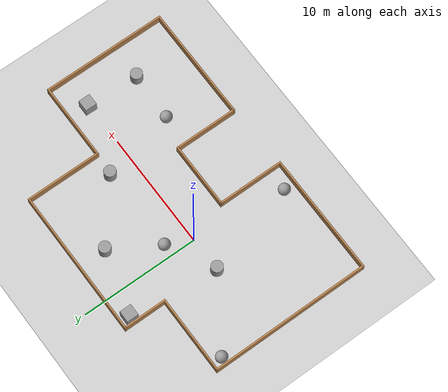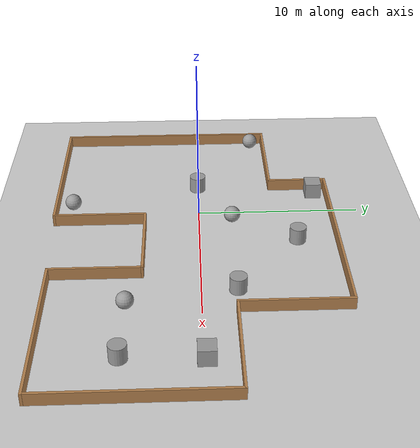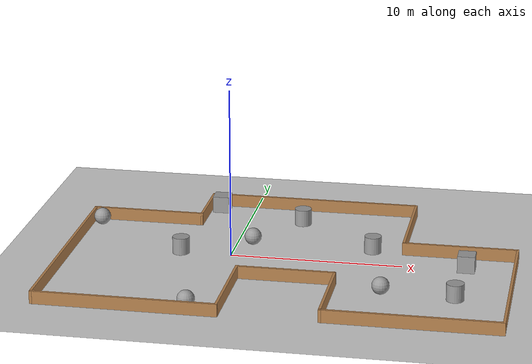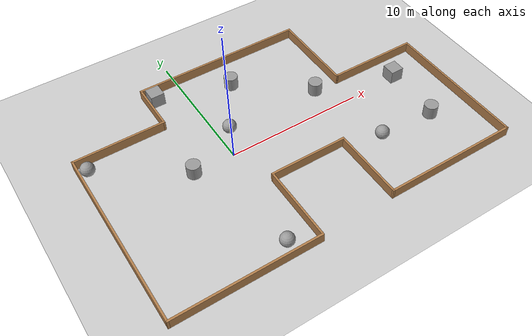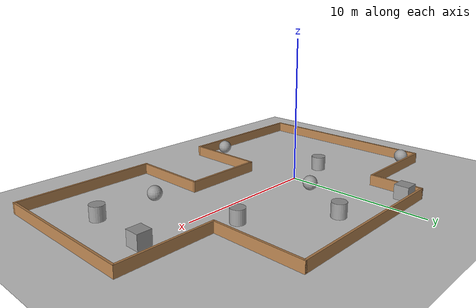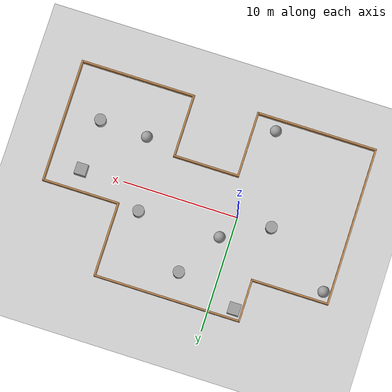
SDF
<sdf version="1.7">
 <world name="default">
  <light name="sun" type="directional">
   <pose>0 0 10 0 -0 0</pose>
   <diffuse>0.8 0.8 0.8 1</diffuse>
   <specular>0.2 0.2 0.2 1</specular>
   <attenuation>
    <range>1000</range>
    <constant>0.9</constant>
    <linear>0.01</linear>
    <quadratic>0.001</quadratic>
   </attenuation>
   <direction>-0.5 0.1 -0.9</direction>
   <spot><inner_angle>0</inner_angle><outer_angle>0</outer_angle><falloff>0</falloff></spot>
  </light>
  <model name="ground_plane">
   <static>1</static>
   <link name="link">
    <collision name="collision">
     <geometry><plane><normal>0 0 1</normal><size>100 100</size></plane></geometry>
     <surface>
      <contact><collide_bitmask>65535</collide_bitmask></contact>
      <friction><ode><mu>100</mu><mu2>50</mu2></ode></friction>
     </surface>
    </collision>
    <visual name="visual">
     <cast_shadows>0</cast_shadows>
     <geometry><plane><normal>0 0 1</normal><size>100 100</size></plane></geometry>
     <material>
      <script><uri>file://media/materials/scripts/gazebo.material</uri><name>Gazebo/Grey</name></script>
     </material>
    </visual>
   </link>
  </model>
  <gravity>0 0 -9.8</gravity>
  <magnetic_field>6e-06 2.3e-05 -4.2e-05</magnetic_field>
  <atmosphere type="adiabatic"/>
  <physics type="ode">
   <max_step_size>0.001</max_step_size>
   <real_time_factor>1</real_time_factor>
   <real_time_update_rate>1000</real_time_update_rate>
  </physics>
  <scene><ambient>0.4 0.4 0.4 1</ambient><background>0.7 0.7 0.7 1</background><shadows>1</shadows></scene>
  <spherical_coordinates>
   <surface_model>EARTH_WGS84</surface_model>
   <latitude_deg>0</latitude_deg>
   <longitude_deg>0</longitude_deg>
   <elevation>0</elevation>
   <heading_deg>0</heading_deg>
  </spherical_coordinates>
  <model name="wood_map">
   <pose>3.562 -0.326 0 0 -0 0</pose>
   <link name="Wall_1">
    <collision name="Wall_1_Collision">
     <geometry><box><size>6.75 0.15 0.75</size></box></geometry>
     <pose>0 0 0.375 0 -0 0</pose>
    </collision>
    <visual name="Wall_1_Visual">
     <pose>0 0 0.375 0 -0 0</pose>
     <geometry><box><size>6.75 0.15 0.75</size></box></geometry>
     <material>
      <script><uri>file://media/materials/scripts/gazebo.material</uri><name>Gazebo/Wood</name></script>
      <ambient>1 1 1 1</ambient>
     </material>
     <meta><layer>0</layer></meta>
    </visual>
    <pose>-9.6 5 0 0 -0 0</pose>
   </link>
   <link name="Wall_10">
    <collision name="Wall_10_Collision">
     <geometry><box><size>5.75 0.15 0.75</size></box></geometry>
     <pose>0 0 0.375 0 -0 0</pose>
    </collision>
    <visual name="Wall_10_Visual">
     <pose>0 0 0.375 0 -0 0</pose>
     <geometry><box><size>5.75 0.15 0.75</size></box></geometry>
     <material>
      <script><uri>file://media/materials/scripts/gazebo.material</uri><name>Gazebo/Wood</name></script>
      <ambient>1 1 1 1</ambient>
     </material>
     <meta><layer>0</layer></meta>
    </visual>
    <pose>-2.55 -5.8 0 0 -0 -1.5708</pose>
   </link>
   <link name="Wall_11">
    <collision name="Wall_11_Collision">
     <geometry><box><size>10.5 0.15 0.75</size></box></geometry>
     <pose>0 0 0.375 0 -0 0</pose>
    </collision>
    <visual name="Wall_11_Visual">
     <pose>0 0 0.375 0 -0 0</pose>
     <geometry><box><size>10.5 0.15 0.75</size></box></geometry>
     <material>
      <script><uri>file://media/materials/scripts/gazebo.material</uri><name>Gazebo/Wood</name></script>
      <ambient>1 1 1 1</ambient>
     </material>
     <meta><layer>0</layer></meta>
    </visual>
    <pose>-7.725 -8.6 0 0 -0 3.14159</pose>
   </link>
   <link name="Wall_12">
    <collision name="Wall_12_Collision">
     <geometry><box><size>13.75 0.15 0.75</size></box></geometry>
     <pose>0 0 0.375 0 -0 0</pose>
    </collision>
    <visual name="Wall_12_Visual">
     <pose>0 0 0.375 0 -0 0</pose>
     <geometry><box><size>13.75 0.15 0.75</size></box></geometry>
     <material>
      <script><uri>file://media/materials/scripts/gazebo.material</uri><name>Gazebo/Wood</name></script>
      <ambient>1 1 1 1</ambient>
     </material>
     <meta><layer>0</layer></meta>
    </visual>
    <pose>-12.9 -1.8 0 0 -0 1.5708</pose>
   </link>
   <link name="Wall_15">
    <collision name="Wall_15_Collision">
     <geometry><box><size>5.75 0.15 0.75</size></box></geometry>
     <pose>0 0 0.375 0 -0 0</pose>
    </collision>
    <visual name="Wall_15_Visual">
     <pose>0 0 0.375 0 -0 0</pose>
     <geometry><box><size>5.75 0.15 0.75</size></box></geometry>
     <material>
      <script><uri>file://media/materials/scripts/gazebo.material</uri><name>Gazebo/Wood</name></script>
      <ambient>1 1 1 1</ambient>
     </material>
     <meta><layer>0</layer></meta>
    </visual>
    <pose>0.25 -3 0 0 -0 0</pose>
   </link>
   <link name="Wall_2">
    <collision name="Wall_2_Collision">
     <geometry><box><size>3.75 0.15 0.75</size></box></geometry>
     <pose>0 0 0.375 0 -0 0</pose>
    </collision>
    <visual name="Wall_2_Visual">
     <pose>0 0 0.375 0 -0 0</pose>
     <geometry><box><size>3.75 0.15 0.75</size></box></geometry>
     <material>
      <script><uri>file://media/materials/scripts/gazebo.material</uri><name>Gazebo/Wood</name></script>
      <ambient>1 1 1 1</ambient>
     </material>
     <meta><layer>0</layer></meta>
    </visual>
    <pose>-6.3 6.8 0 0 -0 1.5708</pose>
   </link>
   <link name="Wall_3">
    <collision name="Wall_3_Collision">
     <geometry><box><size>12.75 0.15 0.75</size></box></geometry>
     <pose>0 0 0.375 0 -0 0</pose>
    </collision>
    <visual name="Wall_3_Visual">
     <pose>0 0 0.375 0 -0 0</pose>
     <geometry><box><size>12.75 0.15 0.75</size></box></geometry>
     <material>
      <script><uri>file://media/materials/scripts/gazebo.material</uri><name>Gazebo/Wood</name></script>
      <ambient>1 1 1 1</ambient>
     </material>
     <meta><layer>0</layer></meta>
    </visual>
    <pose>0 8.6 0 0 -0 0</pose>
   </link>
   <link name="Wall_4">
    <collision name="Wall_4_Collision">
     <geometry><box><size>6.5 0.15 0.75</size></box></geometry>
     <pose>0 0 0.375 0 -0 0</pose>
    </collision>
    <visual name="Wall_4_Visual">
     <pose>0 0 0.375 0 -0 0</pose>
     <geometry><box><size>6.5 0.15 0.75</size></box></geometry>
     <material>
      <script><uri>file://media/materials/scripts/gazebo.material</uri><name>Gazebo/Wood</name></script>
      <ambient>1 1 1 1</ambient>
     </material>
     <meta><layer>0</layer></meta>
    </visual>
    <pose>6.3 5.425 0 0 -0 -1.5708</pose>
   </link>
   <link name="Wall_5">
    <collision name="Wall_5_Collision">
     <geometry><box><size>6.75 0.15 0.75</size></box></geometry>
     <pose>0 0 0.375 0 -0 0</pose>
    </collision>
    <visual name="Wall_5_Visual">
     <pose>0 0 0.375 0 -0 0</pose>
     <geometry><box><size>6.75 0.15 0.75</size></box></geometry>
     <material>
      <script><uri>file://media/materials/scripts/gazebo.material</uri><name>Gazebo/Wood</name></script>
      <ambient>1 1 1 1</ambient>
     </material>
     <meta><layer>0</layer></meta>
    </visual>
    <pose>9.6 2.25 0 0 -0 0</pose>
   </link>
   <link name="Wall_6">
    <collision name="Wall_6_Collision">
     <geometry><box><size>10.75 0.15 0.75</size></box></geometry>
     <pose>0 0 0.375 0 -0 0</pose>
    </collision>
    <visual name="Wall_6_Visual">
     <pose>0 0 0.375 0 -0 0</pose>
     <geometry><box><size>10.75 0.15 0.75</size></box></geometry>
     <material>
      <script><uri>file://media/materials/scripts/gazebo.material</uri><name>Gazebo/Wood</name></script>
      <ambient>1 1 1 1</ambient>
     </material>
     <meta><layer>0</layer></meta>
    </visual>
    <pose>12.9 -3.05 0 0 -0 -1.5708</pose>
   </link>
   <link name="Wall_7">
    <collision name="Wall_7_Collision">
     <geometry><box><size>10 0.15 0.75</size></box></geometry>
     <pose>0 0 0.375 0 -0 0</pose>
    </collision>
    <visual name="Wall_7_Visual">
     <pose>0 0 0.375 0 -0 0</pose>
     <geometry><box><size>10 0.15 0.75</size></box></geometry>
     <material>
      <script><uri>file://media/materials/scripts/gazebo.material</uri><name>Gazebo/Wood</name></script>
      <ambient>1 1 1 1</ambient>
     </material>
     <meta><layer>0</layer></meta>
    </visual>
    <pose>7.975 -8.35 0 0 -0 3.14159</pose>
   </link>
   <link name="Wall_8">
    <collision name="Wall_8_Collision">
     <geometry><box><size>5.5 0.15 0.75</size></box></geometry>
     <pose>0 0 0.375 0 -0 0</pose>
    </collision>
    <visual name="Wall_8_Visual">
     <pose>0 0 0.375 0 -0 0</pose>
     <geometry><box><size>5.5 0.15 0.75</size></box></geometry>
     <material>
      <script><uri>file://media/materials/scripts/gazebo.material</uri><name>Gazebo/Wood</name></script>
      <ambient>1 1 1 1</ambient>
     </material>
     <meta><layer>0</layer></meta>
    </visual>
    <pose>3.05 -5.675 0 0 -0 1.5708</pose>
   </link>
   <static>1</static>
  </model>
  <model name="unit_cylinder">
   <pose>8.03585 2.04415 0.499993 -3e-06 3e-06 0</pose>
   <link name="link">
    <inertial>
     <mass>1</mass>
     <inertia><ixx>0.145833</ixx><ixy>0</ixy><ixz>0</ixz><iyy>0.145833</iyy><iyz>0</iyz><izz>0.125</izz></inertia>
    </inertial>
    <collision name="collision">
     <geometry><cylinder><radius>0.5</radius><length>1</length></cylinder></geometry>
    </collision>
    <visual name="visual">
     <geometry><cylinder><radius>0.5</radius><length>1</length></cylinder></geometry>
     <material>
      <script><name>Gazebo/Grey</name><uri>file://media/materials/scripts/gazebo.material</uri></script>
     </material>
    </visual>
   </link>
  </model>
  <model name="unit_box">
   <pose>-2.05485 7.43912 0.499995 -1e-05 -0 -0</pose>
   <link name="link">
    <inertial>
     <mass>1</mass>
     <inertia>
      <ixx>0.166667</ixx>
      <ixy>0</ixy>
      <ixz>0</ixz>
      <iyy>0.166667</iyy>
      <iyz>0</iyz>
      <izz>0.166667</izz>
     </inertia>
    </inertial>
    <collision name="collision"><geometry><box><size>1 1 1</size></box></geometry></collision>
    <visual name="visual">
     <geometry><box><size>1 1 1</size></box></geometry>
     <material>
      <script><name>Gazebo/Grey</name><uri>file://media/materials/scripts/gazebo.material</uri></script>
     </material>
    </visual>
   </link>
  </model>
  <model name="unit_sphere">
   <pose>-0.87581 -7.92673 0.5 0 -0 0</pose>
   <link name="link">
    <inertial>
     <mass>1</mass>
     <inertia><ixx>0.1</ixx><ixy>0</ixy><ixz>0</ixz><iyy>0.1</iyy><iyz>0</iyz><izz>0.1</izz></inertia>
    </inertial>
    <collision name="collision"><geometry><sphere><radius>0.5</radius></sphere></geometry></collision>
    <visual name="visual">
     <geometry><sphere><radius>0.5</radius></sphere></geometry>
     <material>
      <script><name>Gazebo/Grey</name><uri>file://media/materials/scripts/gazebo.material</uri></script>
     </material>
    </visual>
   </link>
  </model>
  <model name="unit_sphere_0">
   <pose>-8.70818 3.80106 0.5 0 -0 0</pose>
   <link name="link">
    <inertial>
     <mass>1</mass>
     <inertia><ixx>0.1</ixx><ixy>0</ixy><ixz>0</ixz><iyy>0.1</iyy><iyz>0</iyz><izz>0.1</izz></inertia>
    </inertial>
    <collision name="collision"><geometry><sphere><radius>0.5</radius></sphere></geometry></collision>
    <visual name="visual">
     <geometry><sphere><radius>0.5</radius></sphere></geometry>
     <material>
      <script><name>Gazebo/Grey</name><uri>file://media/materials/scripts/gazebo.material</uri></script>
     </material>
    </visual>
   </link>
  </model>
  <model name="unit_cylinder_0">
   <pose>-2.96211 -0.004788 0.499992 -3e-06 3e-06 0</pose>
   <link name="link">
    <inertial>
     <mass>1</mass>
     <inertia><ixx>0.145833</ixx><ixy>0</ixy><ixz>0</ixz><iyy>0.145833</iyy><iyz>0</iyz><izz>0.125</izz></inertia>
    </inertial>
    <collision name="collision">
     <geometry><cylinder><radius>0.5</radius><length>1</length></cylinder></geometry>
    </collision>
    <visual name="visual">
     <geometry><cylinder><radius>0.5</radius><length>1</length></cylinder></geometry>
     <material>
      <script><name>Gazebo/Grey</name><uri>file://media/materials/scripts/gazebo.material</uri></script>
     </material>
    </visual>
   </link>
  </model>
  <model name="unit_sphere_1">
   <pose>0.918322 2.05981 0.5 0 -0 0</pose>
   <link name="link">
    <inertial>
     <mass>1</mass>
     <inertia><ixx>0.1</ixx><ixy>0</ixy><ixz>0</ixz><iyy>0.1</iyy><iyz>0</iyz><izz>0.1</izz></inertia>
    </inertial>
    <collision name="collision"><geometry><sphere><radius>0.5</radius></sphere></geometry></collision>
    <visual name="visual">
     <geometry><sphere><radius>0.5</radius></sphere></geometry>
     <material>
      <script><name>Gazebo/Grey</name><uri>file://media/materials/scripts/gazebo.material</uri></script>
     </material>
    </visual>
   </link>
  </model>
  <model name="unit_sphere_2">
   <pose>9.30381 -4.17381 0.5 0 -0 0</pose>
   <link name="link">
    <inertial>
     <mass>1</mass>
     <inertia><ixx>0.1</ixx><ixy>0</ixy><ixz>0</ixz><iyy>0.1</iyy><iyz>0</iyz><izz>0.1</izz></inertia>
    </inertial>
    <collision name="collision"><geometry><sphere><radius>0.5</radius></sphere></geometry></collision>
    <visual name="visual">
     <geometry><sphere><radius>0.5</radius></sphere></geometry>
     <material>
      <script><name>Gazebo/Grey</name><uri>file://media/materials/scripts/gazebo.material</uri></script>
     </material>
    </visual>
   </link>
  </model>
  <model name="unit_box_0">
   <pose>13.6816 0.154375 0.499995 -1e-05 -0 -0</pose>
   <link name="link">
    <inertial>
     <mass>1</mass>
     <inertia>
      <ixx>0.166667</ixx>
      <ixy>0</ixy>
      <ixz>0</ixz>
      <iyy>0.166667</iyy>
      <iyz>0</iyz>
      <izz>0.166667</izz>
     </inertia>
    </inertial>
    <collision name="collision"><geometry><box><size>1 1 1</size></box></geometry></collision>
    <visual name="visual">
     <geometry><box><size>1 1 1</size></box></geometry>
     <material>
      <script><name>Gazebo/Grey</name><uri>file://media/materials/scripts/gazebo.material</uri></script>
     </material>
    </visual>
   </link>
  </model>
  <model name="unit_cylinder_1">
   <pose>13.4577 -4.32308 0.499992 -3e-06 4e-06 0</pose>
   <link name="link">
    <inertial>
     <mass>1</mass>
     <inertia><ixx>0.145833</ixx><ixy>0</ixy><ixz>0</ixz><iyy>0.145833</iyy><iyz>0</iyz><izz>0.125</izz></inertia>
    </inertial>
    <collision name="collision">
     <geometry><cylinder><radius>0.5</radius><length>1</length></cylinder></geometry>
    </collision>
    <visual name="visual">
     <geometry><cylinder><radius>0.5</radius><length>1</length></cylinder></geometry>
     <material>
      <script><name>Gazebo/Grey</name><uri>file://media/materials/scripts/gazebo.material</uri></script>
     </material>
    </visual>
   </link>
  </model>
  <model name="unit_cylinder_2">
   <pose>3.25951 5.90039 0.499998 3e-06 -4e-06 0</pose>
   <link name="link">
    <inertial>
     <mass>1</mass>
     <inertia><ixx>0.145833</ixx><ixy>0</ixy><ixz>0</ixz><iyy>0.145833</iyy><iyz>0</iyz><izz>0.125</izz></inertia>
    </inertial>
    <collision name="collision">
     <geometry><cylinder><radius>0.5</radius><length>1</length></cylinder></geometry>
    </collision>
    <visual name="visual">
     <geometry><cylinder><radius>0.5</radius><length>1</length></cylinder></geometry>
     <material>
      <script><name>Gazebo/Grey</name><uri>file://media/materials/scripts/gazebo.material</uri></script>
     </material>
    </visual>
   </link>
  </model>
 </world>
</sdf>
